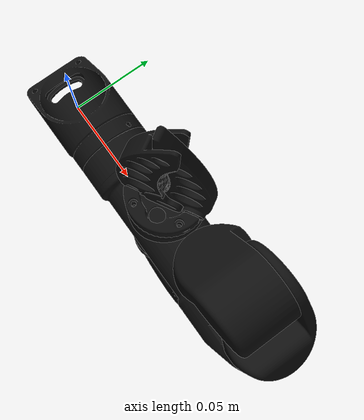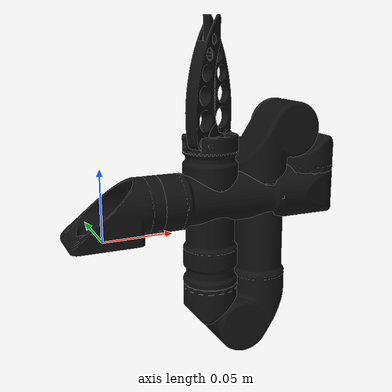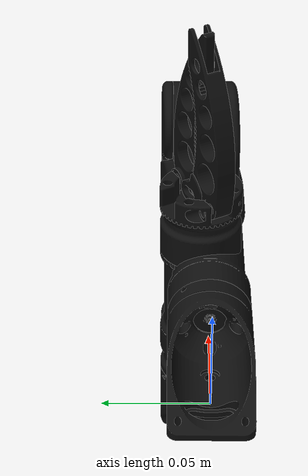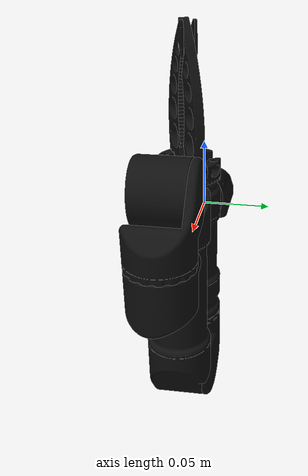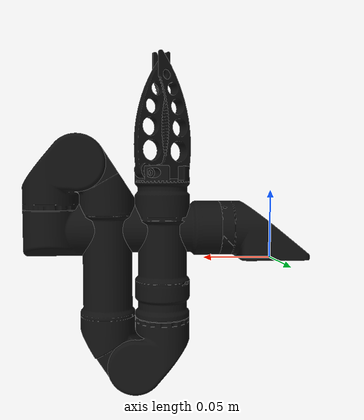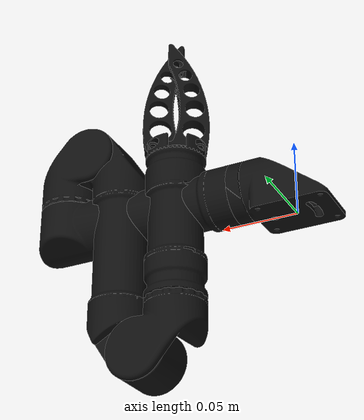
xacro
<?xml version="1.0"?>
<robot name="alpha"
       xmlns:xacro="http://ros.org/wiki/xacro">

  <!-- import main macros -->
  <xacro:include filename="$(find reach_description)/description/alpha_5/urdf.xacro" />
  <xacro:include filename="$(find reach_description)/description/alpha_5/ros2_control.xacro" />
  <xacro:include filename="$(find reach_description)/description/alpha_5/end_effectors/standard_jaws.urdf.xacro" />

  <!-- parameters -->
  <xacro:arg name="use_fake_hardware"
             default="true" />
  <xacro:arg name="serial_port"
             default="" />
  <xacro:arg name="prefix"
             default="" />
  <xacro:arg name="use_sim"
             default="false" />

  <!-- initial positions used for simulation -->
  <xacro:arg name="initial_positions_file"
             default="$(find reach_description)/config/alpha_5/initial_positions.yaml" />

  <xacro:property name="prefix"
                  value="$(arg prefix)" />
  <xacro:property name="use_sim"
                  value="$(arg use_sim)" />

  <!-- create link fixed to the "world" -->
  <link name="world" />

  <!-- arm -->
  <xacro:alpha_urdf parent="world"
                    prefix="${prefix}">
    <origin xyz="0 0 0"
            rpy="0 0 0" />
  </xacro:alpha_urdf>

  <!-- end effector -->
  <xacro:standard_jaws parent="${prefix}rs1_124_link"
                       prefix="${prefix}"
                       axis_a="${prefix}axis_a">
  </xacro:standard_jaws>

  <!-- ros2_control interface -->
  <xacro:alpha_system prefix="${prefix}"
                      serial_port="$(arg serial_port)"
                      initial_positions_file="/home/ubuntu/ws_ros/src/reach/reach_description/config/alpha_5/initial_positions.yaml"
                      use_sim="${use_sim}"
                      use_fake_hardware="$(arg use_fake_hardware)" />

</robot>

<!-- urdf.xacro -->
<robot xmlns:xacro="http://ros.org/wiki/xacro">
  <xacro:macro name="alpha_urdf"
               params="parent prefix *origin">

    <!-- links -->
    <link name="${prefix}base_link">
      <visual>
        <geometry>
          <mesh filename="file://$(find reach_description)/meshes/alpha_5/RS1-1010.dae" />
        </geometry>
        <origin rpy="0 0 0"
                xyz="0 0 0" />
      </visual>
      <collision>
        <geometry>
          <cylinder length="0.150"
                    radius="0.020" />
        </geometry>
        <origin rpy="0 1.57075 0"
                xyz="-0.055 0 0" />
      </collision>
      <inertial>
        <mass value="0.0001" />
        <inertia ixx="0.0001"
                 ixy="0"
                 ixz="0"
                 iyy="0.0001"
                 iyz="0"
                 izz="0.0001" />
      </inertial>
    </link>

    <link name="${prefix}m3_inline_link">
      <visual>
        <geometry>
          <mesh filename="file://$(find reach_description)/meshes/alpha_5/M3-INLINE.dae" />
        </geometry>
        <origin rpy="0 0 0"
                xyz="0 0 0" />
      </visual>
      <collision>
        <geometry>
          <cylinder length="0.150"
                    radius="0.020" />
        </geometry>
        <origin rpy="0 1.57075 0"
                xyz="-0.055 0 0" />
      </collision>
      <inertial>
        <mass value="0.341" />
        <origin xyz="-0.055 0 0" />
        <inertia ixx="0.0000682"
                 ixy="0"
                 ixz="0"
                 iyy="0.000673"
                 iyz="0"
                 izz="0.000673" />
      </inertial>
    </link>

    <link name="${prefix}m2_1_1_link">
      <visual>
        <geometry>
          <mesh filename="file://$(find reach_description)/meshes/alpha_5/M2-1-1.dae" />
        </geometry>
        <origin rpy="0 0 0"
                xyz="0 0 0" />
      </visual>
      <collision>
        <geometry>
          <cylinder length="0.033"
                    radius="0.020" />
        </geometry>
        <origin rpy="0 0 0"
                xyz="0 0 0.0165" />
      </collision>
      <inertial>
        <mass value="0.194" />
        <origin xyz="0 0 0.0165" />
        <inertia ixx="0.000037"
                 ixy="0"
                 ixz="0"
                 iyy="0.000037"
                 iyz="0"
                 izz="0.0000388" />
      </inertial>
    </link>

    <link name="${prefix}m2_link">
      <visual>
        <geometry>
          <mesh filename="file://$(find reach_description)/meshes/alpha_5/M2.dae" />
        </geometry>
        <origin rpy="0 0 0"
                xyz="0 0 0" />
      </visual>
      <collision>
        <geometry>
          <cylinder length="0.145"
                    radius="0.020" />
        </geometry>
        <origin rpy="0 0 0"
                xyz="-0.02 0 -0.0725" />
      </collision>
      <collision>
        <geometry>
          <cylinder length="0.040"
                    radius="0.020" />
        </geometry>
        <origin rpy="1.5707 0 0"
                xyz="0 0 0" />
      </collision>
      <collision>
        <geometry>
          <cylinder length="0.040"
                    radius="0.020" />
        </geometry>
        <origin rpy="1.5707 0 0"
                xyz="-0.040 0 -0.1453" />
      </collision>
      <inertial>
        <mass value="0.429" />
        <origin xyz="-0.02 0 -0.0725" />
        <inertia ixx="0.0008907"
                 ixy="0"
                 ixz="0"
                 iyy="0.0008907"
                 iyz="0"
                 izz="0.0000858" />
      </inertial>
    </link>

    <link name="${prefix}m2_1_3_link">
      <visual>
        <geometry>
          <mesh filename="file://$(find reach_description)/meshes/alpha_5/M2-1-3.dae" />
        </geometry>
        <origin rpy="0 0 0"
                xyz="0 0 0" />
      </visual>
      <collision>
        <geometry>
          <cylinder length="0.033"
                    radius="0.020" />
        </geometry>
        <origin rpy="0 0 0"
                xyz="0.02 0 0.0165" />
      </collision>
      <inertial>
        <mass value="0.115" />
        <origin xyz="0.02 0 0.0165" />
        <inertia ixx="0.0000219"
                 ixy="0"
                 ixz="0"
                 iyy="0.0000219"
                 iyz="0"
                 izz="0.000023" />
      </inertial>
    </link>

    <link name="${prefix}m1_link">
      <visual>
        <geometry>
          <mesh filename="file://$(find reach_description)/meshes/alpha_5/M1.dae" />
        </geometry>
        <origin rpy="0 -1.5707 0"
                xyz="0 0 0" />
      </visual>
      <collision>
        <geometry>
          <cylinder length="0.1"
                    radius="0.020" />
        </geometry>
        <origin rpy="0 0 0"
                xyz="0 0 0.05" />
      </collision>
      <inertial>
        <mass value="0.200" />
        <origin xyz="0 0 0.05" />
        <inertia ixx="0.0001867"
                 ixy="0"
                 ixz="0"
                 iyy="0.0001867"
                 iyz="0"
                 izz="0.00004" />
      </inertial>
    </link>

    <link name="${prefix}rs1_124_link">
      <visual>
        <geometry>
          <mesh filename="file://$(find reach_description)/meshes/alpha_5/RS1-124.dae" />
        </geometry>
        <origin rpy="0 -1.5707 0"
                xyz="0 0 0" />
      </visual>
      <collision>
        <geometry>
          <cylinder length="0.1"
                    radius="0.020" />
        </geometry>
        <origin rpy="0 0 0"
                xyz="0 0 0.05" />
      </collision>
      <inertial>
        <mass value="0.0001" />
        <inertia ixx="0.0001"
                 ixy="0"
                 ixz="0"
                 iyy="0.0001"
                 iyz="0"
                 izz="0.0001" />
      </inertial>
    </link>

    <link name="${prefix}push_rod">
      <visual>
        <origin rpy="0 0 0"
                xyz="0 0 0" />
        <geometry>
          <box size="0.001 0.001 0.001" />
        </geometry>
        <material name="transparent">
          <color rgba="0 0 0 0" />
        </material>
      </visual>
      <inertial>
        <mass value="0.0001" />
        <inertia ixx="0.0001"
                 ixy="0"
                 ixz="0"
                 iyy="0.0001"
                 iyz="0"
                 izz="0.0001" />
      </inertial>
    </link>

    <!-- joints -->
    <joint name="${prefix}base_joint"
           type="fixed">
      <xacro:insert_block name="origin" />
      <parent link="${parent}" />
      <child link="${prefix}base_link" />
    </joint>

    <joint name="${prefix}mount_joint"
           type="fixed">
      <parent link="${prefix}base_link" />
      <child link="${prefix}m3_inline_link" />
      <origin xyz="0.1614 0.004 0.0225"
              rpy="0 0 0" />
    </joint>

    <joint name="${prefix}axis_e"
           type="revolute">
      <parent link="${prefix}m3_inline_link" />
      <child link="${prefix}m2_1_1_link" />
      <origin xyz="0 0 0.014" />
      <axis xyz="0 0 1" />
      <limit effort="9.0"
             lower="0.0"
             upper="6.10"
             velocity="0.5" />
    </joint>

    <joint name="${prefix}axis_d"
           type="revolute">
      <parent link="${prefix}m2_1_1_link" />
      <child link="${prefix}m2_link" />
      <origin xyz="-0.02 0 0.033" />
      <axis xyz="0 1 0" />
      <limit effort="9.0"
             lower="-3.49"
             upper="3.49"
             velocity="0.5" />
    </joint>

    <joint name="${prefix}axis_c"
           type="revolute">
      <parent link="${prefix}m2_link" />
      <child link="${prefix}m2_1_3_link" />
      <origin xyz="-0.04 0 -0.1453"
              rpy="0 0 3.14159" />
      <axis xyz="0 1 0" />
      <limit effort="9.0"
             lower="0.0"
             upper="3.22"
             velocity="0.5" />
    </joint>

    <joint name="${prefix}axis_b"
           type="revolute">
      <parent link="${prefix}m2_1_3_link" />
      <child link="${prefix}m1_link" />
      <origin xyz="0.02 0 0.033"
              rpy="0 0 2.09439" />
      <axis xyz="0 0 -1" />
      <limit effort="9.0"
             lower="0.0"
             upper="3.22"
             velocity="0.5" />
    </joint>

    <joint name="${prefix}tcp_base_joint"
           type="fixed">
      <origin rpy="0 0 0"
              xyz="0 0 0.09975" />
      <parent link="${prefix}m1_link" />
      <child link="${prefix}rs1_124_link" />
    </joint>

    <joint name="${prefix}axis_a"
           type="prismatic">
      <origin rpy="0 0 0"
              xyz="0 0 0.009" />
      <parent link="${prefix}rs1_124_link" />
      <child link="${prefix}push_rod" />
      <axis xyz="0 0 1" />
      <limit effort="10"
             lower="0"
             upper="0.015"
             velocity="10" />
    </joint>

  </xacro:macro>

</robot>

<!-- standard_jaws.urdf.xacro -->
<robot xmlns:xacro="http://ros.org/wiki/xacro">

  <xacro:macro name="standard_jaws"
               params="parent prefix axis_a">

    <link name="${prefix}rs1_130_link">
      <visual>
        <geometry>
          <mesh filename="file://$(find reach_description)/meshes/alpha_5/end_effectors/RS1-130.dae" />
        </geometry>
        <origin xyz="0 0 0"
                rpy="0 0 0" />
      </visual>
      <collision>
        <geometry>
          <box size="0.012 0.03 0.09" />
        </geometry>
        <origin xyz="0.0 -0.008 0.045"
                rpy="0 0 0" />
      </collision>
      <inertial>
        <mass value="0.055" />
        <origin xyz="0.0 -0.008 0.045"
                rpy="0 0 0" />
        <inertia ixx="0.00004125"
                 ixy="0"
                 ixz="0"
                 iyy="0.000037785"
                 iyz="0"
                 izz="0.000004785" />
      </inertial>
    </link>

    <link name="${prefix}rs1_139_link">
      <visual>
        <geometry>
          <mesh filename="file://$(find reach_description)/meshes/alpha_5/end_effectors/RS1-139.dae" />
        </geometry>
        <origin xyz="0 0 0"
                rpy="0 0 0" />
      </visual>
      <collision>
        <geometry>
          <box size="0.012 0.03 0.09" />
        </geometry>
        <origin xyz="0.0 0.008 0.045"
                rpy="0 0 0" />
      </collision>
      <inertial>
        <mass value="0.055" />
        <origin xyz="0.0 0.008 0.045"
                rpy="0 0 0" />
        <inertia ixx="0.00004125"
                 ixy="0"
                 ixz="0"
                 iyy="0.000037785"
                 iyz="0"
                 izz="0.000004785" />
      </inertial>
    </link>

    <link name="${prefix}tcp">
      <inertial>
        <mass value="0.0001" />
        <inertia ixx="0.0001"
                 ixy="0"
                 ixz="0"
                 iyy="0.0001"
                 iyz="0"
                 izz="0.0001" />
      </inertial>
    </link>

    <joint name="${prefix}rs1_130_joint"
           type="revolute">
      <origin xyz="0 0.0155 0.0069"
              rpy="0 0 0" />
      <parent link="${parent}" />
      <child link="${prefix}rs1_130_link" />
      <axis xyz="-1 0 0" />
      <limit lower="0"
             upper="0.5"
             effort="10"
             velocity="10" />
      <mimic joint="${axis_a}"
             multiplier="51"
             offset="0" />
    </joint>

    <joint name="${prefix}rs1_139_joint"
           type="revolute">
      <origin xyz="0 -0.0155 0.0069"
              rpy="0 0 0" />
      <parent link="${parent}" />
      <child link="${prefix}rs1_139_link" />
      <axis xyz="1 0 0" />
      <limit lower="0"
             upper="0.5"
             effort="10"
             velocity="10" />
      <mimic joint="${prefix}rs1_130_joint"
             multiplier="1"
             offset="0" />
    </joint>

    <joint name="${prefix}tcp_joint"
           type="fixed">
      <origin xyz="0 0 0.04"
              rpy="0 ${-pi / 2} 0" />
      <parent link="${parent}" />
      <child link="${prefix}tcp" />
    </joint>

  </xacro:macro>

</robot>
